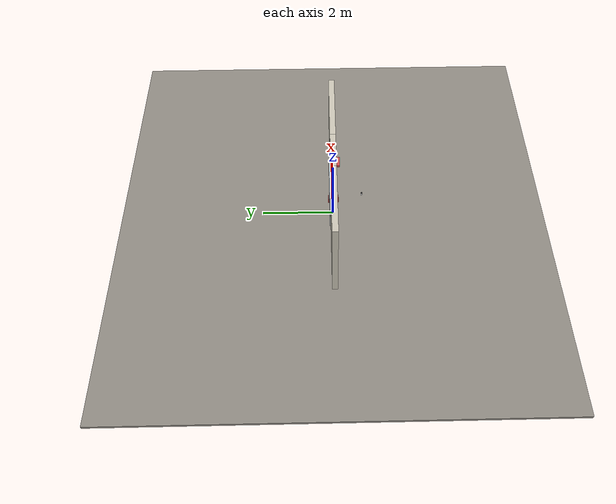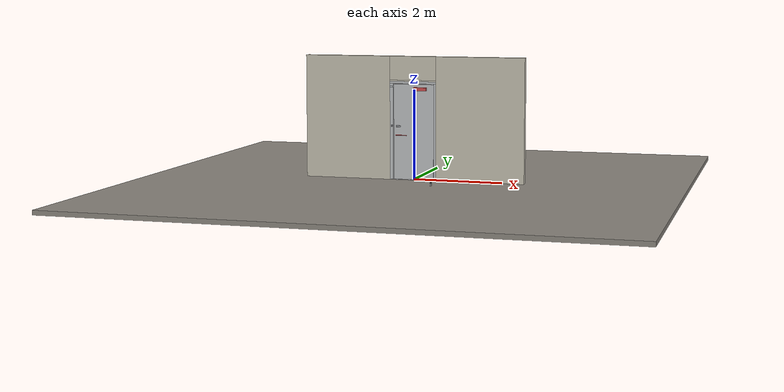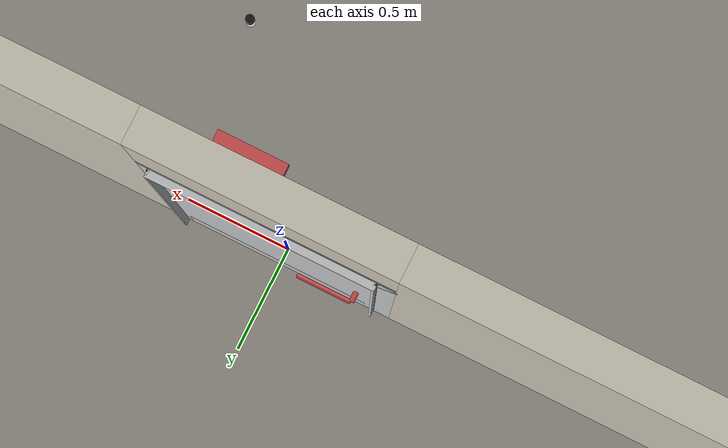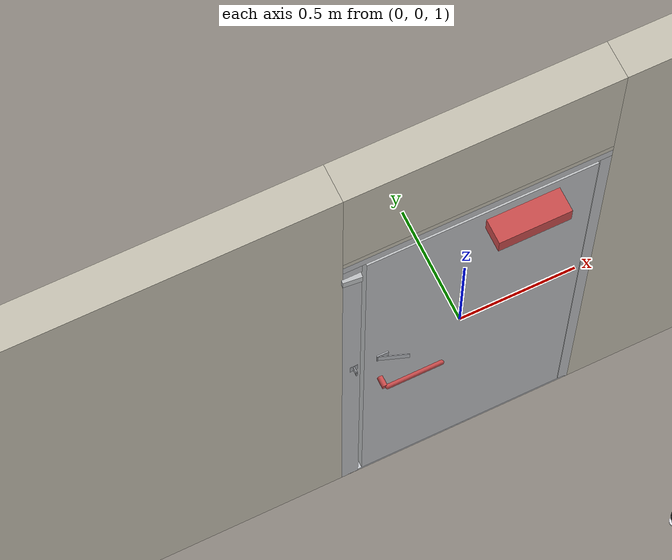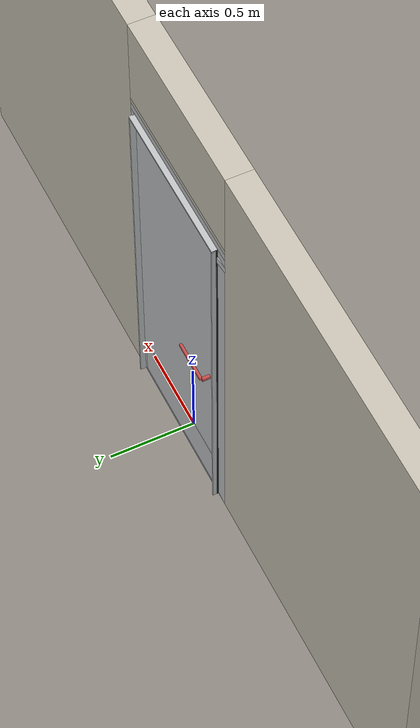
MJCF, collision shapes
<?xml version="1.0" ?>
<mujoco model="db0549_cold_storage_simple">
  <compiler angle="radian" meshdir="../../hardware" texturedir="../../textures" autolimits="true" inertiafromgeom="false"/>
  <option timestep="0.002" integrator="implicitfast" cone="elliptic" impratio="10" noslip_iterations="3">
    <flag multiccd="enable"/>
  </option>
  <size memory="16M"/>
  <default>
    <geom condim="4" solref="0.005 1" solimp="0.95 0.99 0.001"/>
    <joint solreflimit="0.005 1" solimplimit="0.95 0.99 0.001"/>
    <tendon solreflimit="0.005 1"/>
    <equality solref="0.002 1"/>
  </default>
  <visual>
    <headlight ambient="0.4 0.4 0.4" diffuse="0.7 0.7 0.7" specular="0.2 0.2 0.2"/>
    <quality shadowsize="4096"/>
    <map znear="0.01" zfar="60"/>
  </visual>
  <asset>
    <mesh name="closer_body_fdc4667657" file="closer_body_fdc4667657.obj"/>
    <mesh name="hinge_05d9a38dfa" file="hinge_05d9a38dfa.obj"/>
    <mesh name="hinge_jamb_953fb56768" file="hinge_jamb_953fb56768.obj"/>
    <mesh name="lever_40740b93f7" file="lever_40740b93f7.obj"/>
    <material name="mat_floor" rgba="0.55 0.53 0.5 1" specular="0.2" shininess="0.15" reflectance="0"/>
    <material name="mat_wall" rgba="0.78 0.76 0.7 1" specular="0.2" shininess="0.1" reflectance="0"/>
    <material name="mat_hinge" rgba="0.55 0.56 0.58 1" specular="0.8" shininess="0.55" reflectance="0.4"/>
    <material name="mat_leaf" rgba="0.75 0.76 0.77 1" specular="0.8" shininess="0.65" reflectance="0.4"/>
    <material name="mat_op_chrome" rgba="0.9 0.9 0.92 1" specular="0.8" shininess="0.9" reflectance="0.4"/>
    <material name="mat_trim" rgba="0.85 0.66 0.3 1" specular="0.8" shininess="0.75" reflectance="0.4"/>
    <material name="mat_bolt" rgba="0.75 0.76 0.77 1" specular="0.8" shininess="0.65" reflectance="0.4"/>
    <material name="mat_op_steel_galvanized" rgba="0.65 0.66 0.68 1" specular="0.74" shininess="0.5" reflectance="0.36"/>
    <material name="mat_padlock" rgba="0.85 0.66 0.3 1" specular="0.8" shininess="0.75" reflectance="0.4"/>
    <material name="mat_frame" rgba="0.75 0.76 0.77 1" specular="0.8" shininess="0.65" reflectance="0.4"/>
    <material name="mat_seal" rgba="0.1 0.1 0.1 1" specular="0.2" shininess="0.1" reflectance="0"/>
    <material name="mat_threshold" rgba="0.8 0.81 0.83 1" specular="0.8" shininess="0.6" reflectance="0.4"/>
    <material name="mat_closer" rgba="0.22 0.17 0.13 1" specular="0.8" shininess="0.6" reflectance="0.4"/>
    <material name="mat_kick" rgba="0.75 0.76 0.77 1" specular="0.8" shininess="0.65" reflectance="0.4"/>
    <material name="mat_placard" rgba="0.95 0.75 0.05 1" specular="0.2" shininess="0.5" reflectance="0"/>
    <material name="mat_bumper_stop" rgba="0.08 0.08 0.08 1" specular="0.2" shininess="0.1" reflectance="0"/>
    <material name="mat_stop_base" rgba="0.9 0.9 0.92 1" specular="0.8" shininess="0.9" reflectance="0.4"/>
    <texture name="skybox" type="skybox" builtin="gradient" rgb1="0.6 0.7 0.85" rgb2="0.9 0.92 0.95" width="256" height="256"/>
  </asset>
  <worldbody>
    <light name="sun" pos="1.5 -2.5 4" dir="-0.3 0.5 -0.8" directional="true" diffuse="0.8 0.8 0.8" specular="0.3 0.3 0.3" castshadow="true"/>
    <light name="fill" pos="-1.5 2.5 3" dir="0.3 -0.5 -0.7" directional="true" diffuse="0.35 0.35 0.4" castshadow="false"/>
    <camera name="robot_view" pos="0 -2.640625 1.814375" xyaxes="1 0 0 0 0.26963 0.962964" fovy="52"/>
    <camera name="far_view" pos="0 2.640625 1.814375" xyaxes="-1 0 0 0 -0.26963 0.962964" fovy="52"/>
    <camera name="iso" pos="-2.006875 -2.218125 2.236875" xyaxes="0.741536 -0.670913 0 0.242917 0.268487 0.932151" fovy="46"/>
    <camera name="detail_handle" pos="-0.003 -0.93 1.28" xyaxes="0.97561 0.219512 0 -0.070934 0.315262 0.94635" fovy="38"/>
    <geom name="floor" type="box" size="6 6 0.05" pos="0 0 -0.05" material="mat_floor" group="0" contype="1" conaffinity="1" friction="0.8 0.005 0.0001" density="2400"/>
    <geom name="wall_left" type="box" size="0.98 0.075 1.375" pos="-1.52 0 1.375" material="mat_wall" group="0" contype="1" conaffinity="1" friction="0.6 0.005 0.0001" density="800"/>
    <geom name="wall_right" type="box" size="0.995 0.075 1.375" pos="1.505 0 1.375" material="mat_wall" group="0" contype="1" conaffinity="1" friction="0.6 0.005 0.0001" density="800"/>
    <geom name="wall_header" type="box" size="0.525 0.075 0.2625" pos="-0.015 0 2.4875" material="mat_wall" group="0" contype="1" conaffinity="1" friction="0.6 0.005 0.0001" density="800"/>
    <geom name="hinge_0_jamb" type="mesh" mesh="hinge_jamb_953fb56768" pos="0.462 -0.082 0.267" quat="0 0 1 0" material="mat_hinge" group="1" contype="0" conaffinity="0" density="7850"/>
    <geom name="hinge_1_jamb" type="mesh" mesh="hinge_jamb_953fb56768" pos="0.462 -0.082 1.9504" quat="0 0 1 0" material="mat_hinge" group="1" contype="0" conaffinity="0" density="7850"/>
    <geom name="leaf_staple_leg_n" type="box" size="0.003 0.0025 0.014" pos="-0.492 -0.089 1.2125" quat="0 0 -0.707107 0.707107" material="mat_op_steel_galvanized" group="0" contype="1" conaffinity="1" friction="0.6 0.005 0.0001" density="7800"/>
    <geom name="leaf_staple_leg_p" type="box" size="0.003 0.0025 0.014" pos="-0.492 -0.089 1.1875" quat="0 0 -0.707107 0.707107" material="mat_op_steel_galvanized" group="0" contype="1" conaffinity="1" friction="0.6 0.005 0.0001" density="7800"/>
    <geom name="leaf_staple_bridge" type="box" size="0.003 0.015 0.0025" pos="-0.492 -0.1005 1.2" quat="0 0 -0.707107 0.707107" material="mat_op_steel_galvanized" group="0" contype="1" conaffinity="1" friction="0.6 0.005 0.0001" density="7800"/>
    <geom name="leaf_staple_base" type="box" size="0.016 0.021 0.001" pos="-0.492 -0.076 1.2" quat="0 0 -0.707107 0.707107" material="mat_op_steel_galvanized" group="1" contype="0" conaffinity="0" density="7800"/>
    <geom name="jamb_hinge" type="box" size="0.0225 0.075 1.075" pos="0.4875 0 1.075" material="mat_frame" group="0" contype="1" conaffinity="1" friction="0.6 0.005 0.0001" density="300"/>
    <geom name="strike_2080_wall_n" type="box" size="0.0375 0.03375 0.019" pos="-0.5025 0.04125 2.0804" material="mat_frame" group="0" contype="1" conaffinity="1" friction="0.6 0.005 0.0001" density="300"/>
    <geom name="strike_2080_wall_p" type="box" size="0.0375 0.008 0.019" pos="-0.5025 -0.0155 2.0804" material="mat_frame" group="0" contype="1" conaffinity="1" friction="0.6 0.005 0.0001" density="300"/>
    <geom name="strike_2080_ramp" type="box" size="0.0375 0.035921 0.019" pos="-0.505822 -0.055596 2.0804" quat="0.99881 0 0 -0.048776" material="mat_frame" group="0" contype="1" conaffinity="1" friction="0.12 0.005 0.0001" density="300"/>
    <geom name="strike_2080_ramp_n" type="box" size="0.0375 0.035921 0.019" pos="-0.505822 0.043596 2.0804" quat="0.99881 0 0 0.048776" material="mat_frame" group="0" contype="1" conaffinity="1" friction="0.12 0.005 0.0001" density="300"/>
    <geom name="strike_2080_back" type="box" size="0.0325 0.0075 0.019" pos="-0.5075 0 2.0804" material="mat_frame" group="0" contype="1" conaffinity="1" friction="0.6 0.005 0.0001" density="300"/>
    <geom name="jamb_strike_0" type="box" size="0.0375 0.075 1.0307" pos="-0.5025 0 1.0307" material="mat_frame" group="0" contype="1" conaffinity="1" friction="0.6 0.005 0.0001" density="300"/>
    <geom name="jamb_strike_1" type="box" size="0.0375 0.075 0.0253" pos="-0.5025 0 2.1247" material="mat_frame" group="0" contype="1" conaffinity="1" friction="0.6 0.005 0.0001" density="300"/>
    <geom name="jamb_head" type="box" size="0.525 0.075 0.0225" pos="-0.015 0 2.1725" material="mat_frame" group="0" contype="1" conaffinity="1" friction="0.6 0.005 0.0001" density="300"/>
    <geom name="head_stud" type="box" size="0.525 0.075 0.015" pos="-0.015 0 2.21" material="mat_wall" group="0" contype="1" conaffinity="1" friction="0.6 0.005 0.0001" density="500"/>
    <geom name="stop_hinge" type="box" size="0.0055 0.016 1.075" pos="0.4595 0.0915 1.075" material="mat_frame" group="0" contype="1" conaffinity="1" friction="0.6 0.005 0.0001" density="300"/>
    <geom name="stop_strike" type="box" size="0.0055 0.016 1.075" pos="-0.4595 0.0915 1.075" material="mat_frame" group="0" contype="1" conaffinity="1" friction="0.6 0.005 0.0001" density="300"/>
    <geom name="stop_head" type="box" size="0.465 0.016 0.0055" pos="0 0.0915 2.1445" material="mat_frame" group="0" contype="1" conaffinity="1" friction="0.6 0.005 0.0001" density="300"/>
    <geom name="seal_hinge" type="box" size="0.004 0.005 1.075" pos="0.462 0.08 1.075" material="mat_seal" group="1" contype="0" conaffinity="0" density="1100"/>
    <geom name="seal_strike" type="box" size="0.004 0.005 1.075" pos="-0.462 0.08 1.075" material="mat_seal" group="1" contype="0" conaffinity="0" density="1100"/>
    <geom name="seal_head" type="box" size="0.445 0.005 0.008" pos="0 0.08 2.138" material="mat_seal" group="1" contype="0" conaffinity="0" density="1100"/>
    <geom name="threshold" type="box" size="0.51 0.075 0.0065" pos="0 0 0.0065" material="mat_threshold" group="0" contype="1" conaffinity="1" friction="0.5 0.005 0.0001" density="2700"/>
    <geom name="door_stop_base" type="cylinder" size="0.022 0.003" pos="0.612074 -0.84097 0.003" material="mat_stop_base" group="0" contype="1" conaffinity="1" friction="0.6 0.005 0.0001" density="7850"/>
    <geom name="door_stop_post" type="cylinder" size="0.012 0.0255" pos="0.612074 -0.84097 0.0315" material="mat_stop_base" group="0" contype="1" conaffinity="1" friction="0.6 0.005 0.0001" density="7850"/>
    <geom name="door_stop_bumper" type="cylinder" size="0.022 0.02" pos="0.612074 -0.84097 0.077" material="mat_bumper_stop" group="0" contype="1" conaffinity="1" friction="0.6 0.005 0.0001" density="1100"/>
    <site name="approach_point" pos="0 -1.5 0" quat="1 0 0 0" size="0.05" rgba="0.2 0.9 0.2 0.5" group="4"/>
    <site name="goal_point" pos="0 1.5 0" quat="1 0 0 0" size="0.05" rgba="0.2 0.9 0.2 0.5" group="4"/>
    <site name="door_plane_center" pos="0 0 1.075" quat="1 0 0 0" size="0.02" rgba="0.2 0.9 0.2 0.5" group="4"/>
    <body name="leaf_riser" pos="0.465 0 0">
      <inertial pos="0 0 0" mass="0.01" quat="1 0 0 0" diaginertia="0.000001 0.000001 0.000001"/>
      <joint name="leaf_rise" type="slide" axis="0 0 1" limited="true" range="0 0.0264" damping="1" armature="0.5"/>
      <body name="leaf" pos="0 0 0">
        <inertial pos="-0.414437 -0.025036 1.238913" mass="57.388138" quat="0.515215 -0.513304 -0.461927 -0.507638" diaginertia="3.710351177 28.18377783 31.519542489"/>
        <joint name="leaf_hinge" type="hinge" axis="0 0 1" pos="-0.003 -0.082 0" limited="true" range="0 1.745329" solreflimit="0.02 1" damping="12.263793" frictionloss="4.346105" stiffness="16.997748" springref="-1.529614" armature="0.02"/>
        <geom name="leaf_slab" type="box" size="0.455 0.075 1.0567" pos="-0.458 0 1.0737" material="mat_leaf" group="0" contype="1" conaffinity="1" friction="0.35 0.005 0.0001" density="1"/>
        <geom name="hinge_0" type="mesh" mesh="hinge_05d9a38dfa" pos="-0.003 -0.082 0.267" quat="0 0 1 0" material="mat_hinge" group="1" contype="0" conaffinity="0" density="7850"/>
        <geom name="hinge_1" type="mesh" mesh="hinge_05d9a38dfa" pos="-0.003 -0.082 1.9504" quat="0 0 1 0" material="mat_hinge" group="1" contype="0" conaffinity="0" density="7850"/>
        <geom name="leaf_mag_catch_faceplate" type="box" size="0.0006 0.012 0.029" pos="-0.9124 0 2.0804" material="mat_bolt" group="1" contype="0" conaffinity="0" density="8500"/>
        <geom name="leaf_hasp_plate" type="box" size="0.024 0.0215 0.003" pos="-0.838 -0.078 1.2" quat="0 0 -0.707107 0.707107" material="mat_op_steel_galvanized" group="1" contype="0" conaffinity="0" density="7800"/>
        <geom name="closer_body" type="mesh" mesh="closer_body_fdc4667657" pos="-0.3 -0.075 2.0334" quat="0 0 -0.707107 0.707107" material="mat_closer" group="1" contype="0" conaffinity="0" density="2000"/>
        <geom name="closer_body_col" type="box" size="0.145 0.05 0.035" pos="-0.3 -0.125 2.0334" material="mat_closer" group="3" contype="1" conaffinity="1" rgba="0.8 0.3 0.3 0.25" friction="0.6 0.005 0.0001" density="2000"/>
        <geom name="kick_plate_p" type="box" size="0.425 0.0008 0.125" pos="-0.458 0.0758 0.152" material="mat_kick" group="2" contype="0" conaffinity="0" density="7900"/>
        <site name="leaf_edge_mid" pos="-0.913 0 1.0567" quat="1 0 0 0" size="0.02" rgba="0.2 0.9 0.2 0.5" group="4"/>
        <body name="leaf_handle" pos="-0.848 0 1">
          <inertial pos="0.047801 0 0" mass="2.884841" quat="0 0.707107 0.707107 0" diaginertia="0.01820894 0.037747558 0.053988164"/>
          <joint name="leaf_handle_hinge" type="hinge" axis="0 1 0" limited="true" range="0 0.5" damping="0.58994" frictionloss="0.07" stiffness="2.5" springref="-0.96" armature="0.01"/>
          <geom name="leaf_handle_lever_n" type="mesh" mesh="lever_40740b93f7" pos="0 -0.075 0" quat="0 0 -0.707107 0.707107" material="mat_op_chrome" group="1" contype="0" conaffinity="0" density="3000"/>
          <geom name="leaf_handle_lever_col_n" type="capsule" size="0.0095 0.1155" pos="0.125 -0.13 0" quat="0.707107 0 0.707107 0" material="mat_op_chrome" group="3" contype="1" conaffinity="1" rgba="0.8 0.3 0.3 0.25" friction="0.7 0.01 0.0001" density="3000"/>
          <geom name="leaf_handle_hub_col_n" type="cylinder" size="0.012 0.022" pos="0 -0.105 0" quat="0.707107 -0.707107 0 0" material="mat_op_chrome" group="3" contype="1" conaffinity="1" rgba="0.8 0.3 0.3 0.25" friction="0.6 0.005 0.0001" density="3000"/>
          <geom name="leaf_handle_lever_p" type="mesh" mesh="lever_40740b93f7" pos="0 0.075 0" quat="0 0 0.707107 0.707107" material="mat_op_chrome" group="1" contype="0" conaffinity="0" density="3000"/>
          <geom name="leaf_handle_lever_col_p" type="capsule" size="0.0095 0.1155" pos="0.125 0.13 0" quat="0.707107 0 0.707107 0" material="mat_op_chrome" group="3" contype="1" conaffinity="1" rgba="0.8 0.3 0.3 0.25" friction="0.7 0.01 0.0001" density="3000"/>
          <geom name="leaf_handle_hub_col_p" type="cylinder" size="0.012 0.022" pos="0 0.105 0" quat="0.707107 -0.707107 0 0" material="mat_op_chrome" group="3" contype="1" conaffinity="1" rgba="0.8 0.3 0.3 0.25" friction="0.6 0.005 0.0001" density="3000"/>
          <site name="leaf_handle_grip_n" pos="0.2 -0.13 0" quat="1 0 0 0" size="0.012" rgba="0.2 0.9 0.2 0.5" group="4"/>
          <site name="leaf_handle_grip_p" pos="0.2 0.13 0" quat="1 0 0 0" size="0.012" rgba="0.2 0.9 0.2 0.5" group="4"/>
        </body>
        <body name="leaf_mag_catch" pos="-0.913 0 2.0804">
          <inertial pos="0.012 0 0" mass="0.030762" quat="0 0 -0.707107 0.707107" diaginertia="0.000000526 0.000002949 0.000002949"/>
          <joint name="leaf_mag_catch_slide" type="slide" axis="1 0 0" limited="true" range="0 0.006" damping="2" frictionloss="0.3" stiffness="20000" springref="-0.006" armature="0.1"/>
          <geom name="leaf_mag_catch_capsule" type="capsule" size="0.006 0.012" pos="0.012 0 0" quat="0.707107 0 -0.707107 0" material="mat_bolt" group="0" contype="1" conaffinity="1" friction="0.2 0.005 0.0001" density="8500"/>
        </body>
        <body name="leaf_hasp" pos="-0.858 -0.081 1.2">
          <inertial pos="0.057507 -0.018853 0" mass="0.099099" quat="0.696818 0.696818 -0.120185 -0.120185" diaginertia="0.000010191 0.000120983 0.000131025"/>
          <joint name="leaf_hasp_hinge" type="hinge" axis="0 0 1" limited="true" range="0 2.9" damping="0.02" frictionloss="0.05" armature="0.005" ref="2.8"/>
          <geom name="leaf_hasp_strap" type="box" size="0.0605 0.0175 0.0015" pos="0.057507 -0.018853 0" quat="-0.696818 0.696818 -0.120185 0.120185" material="mat_op_steel_galvanized" group="0" contype="1" conaffinity="1" friction="0.6 0.005 0.0001" density="7800"/>
          <site name="leaf_hasp_grip" pos="0.098514 -0.024412 0" quat="0.169967 0 0 0.98545" size="0.01" rgba="0.2 0.9 0.2 0.5" group="4"/>
        </body>
      </body>
    </body>
  </worldbody>
  <equality>
    <joint name="leaf_rise_couple" joint1="leaf_rise" joint2="leaf_hinge" polycoef="0 0.007639 0 0 0" active="true"/>
  </equality>
  <sensor>
    <jointpos name="leaf_hinge_pos" joint="leaf_hinge"/>
    <jointvel name="leaf_hinge_vel" joint="leaf_hinge"/>
    <jointpos name="leaf_handle_hinge_pos" joint="leaf_handle_hinge"/>
    <jointvel name="leaf_handle_hinge_vel" joint="leaf_handle_hinge"/>
    <jointpos name="leaf_mag_catch_slide_pos" joint="leaf_mag_catch_slide"/>
    <jointvel name="leaf_mag_catch_slide_vel" joint="leaf_mag_catch_slide"/>
    <jointpos name="leaf_hasp_hinge_pos" joint="leaf_hasp_hinge"/>
    <jointvel name="leaf_hasp_hinge_vel" joint="leaf_hasp_hinge"/>
  </sensor>
</mujoco>
